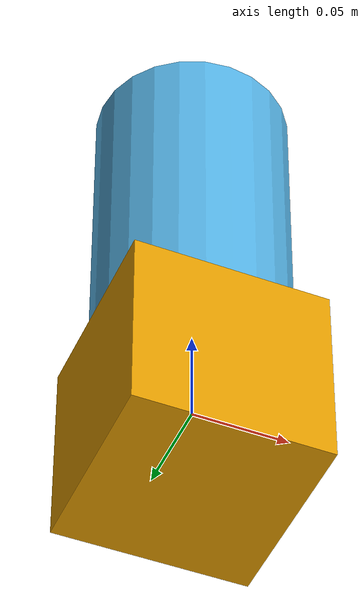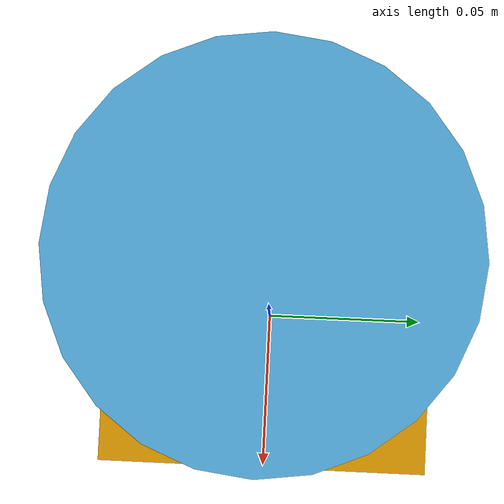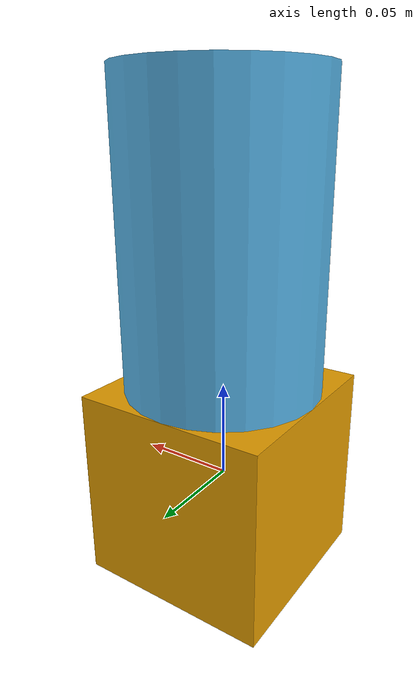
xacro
<?xml version="1.0"?>
<robot xmlns:xacro="http://www.ros.org/wiki/xacro" name="robstride_robot">

  <!-- Minimal robot description -->
  <link name="base_link">
    <visual>
      <geometry>
        <box size="0.1 0.1 0.1"/>
      </geometry>
    </visual>
  </link>

  <link name="joint1_link">
    <visual>
      <geometry>
        <cylinder length="0.2" radius="0.05"/>
      </geometry>
    </visual>
  </link>

  <joint name="joint1" type="revolute">
    <parent link="base_link"/>
    <child link="joint1_link"/>
    <origin xyz="0 0 0.1" rpy="0 0 0"/>
    <axis xyz="0 0 1"/>
    <limit lower="-3.14" upper="3.14" effort="10.0" velocity="5.0"/>
  </joint>

  <!-- ros2_control configuration -->
  <ros2_control name="robstride_system" type="system">
    <hardware>
      <plugin>robstride_hardware/RobStrideHardware</plugin>
      <param name="can_interface">can1</param>
      <param name="motor_id">127</param>
      <param name="kp">1.5</param>
      <param name="kd">0.01</param>

      <!-- State reader thread configuration (200Hz, separate from RT loop) -->
      <param name="state_reader_rate">200</param>
      <param name="state_reader_cpu_affinity">3</param>
      <param name="state_reader_priority">80</param>
    </hardware>

    <joint name="joint1">
      <command_interface name="position">
        <param name="min">-3.14</param>
        <param name="max">3.14</param>
      </command_interface>
      <state_interface name="position"/>
      <state_interface name="velocity"/>
      <state_interface name="effort"/>
    </joint>
  </ros2_control>

</robot>
